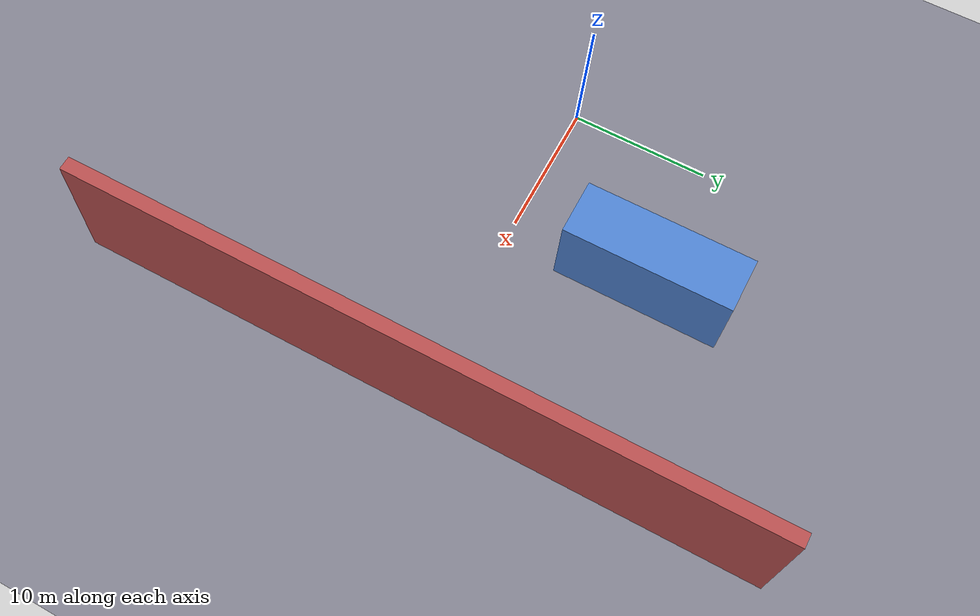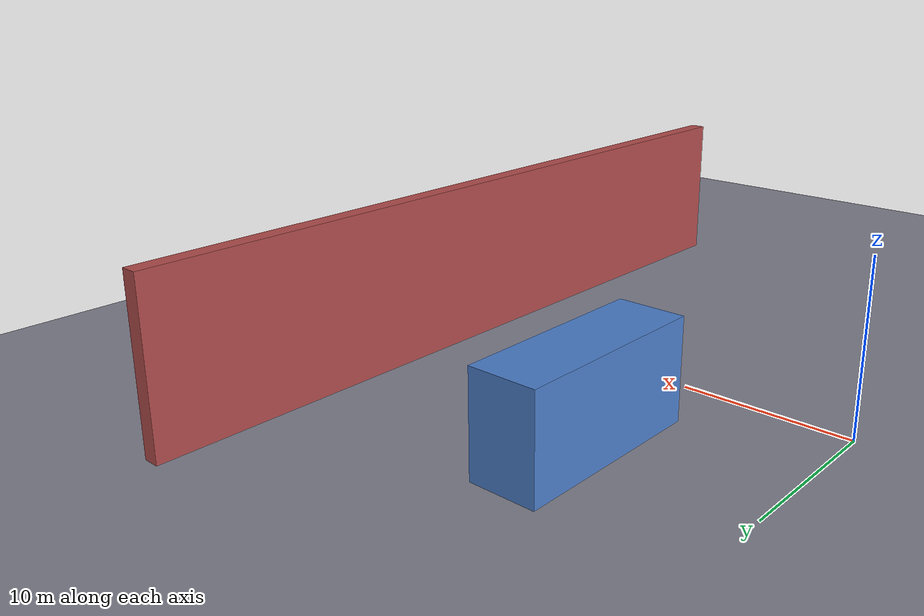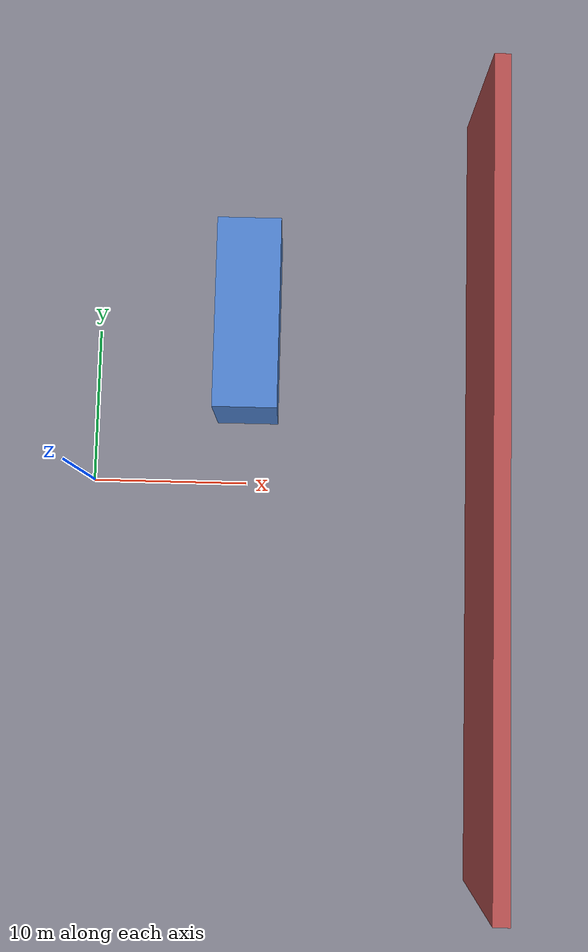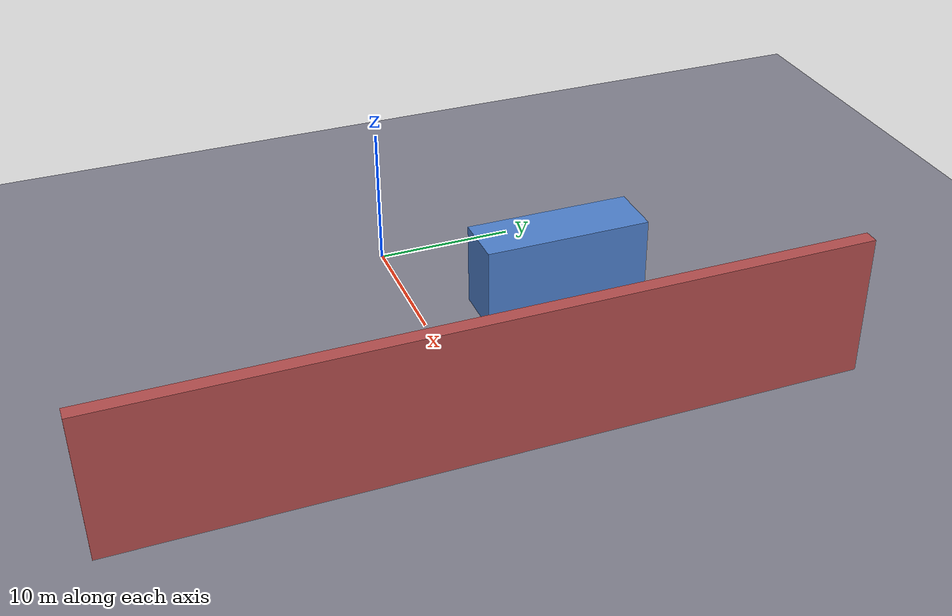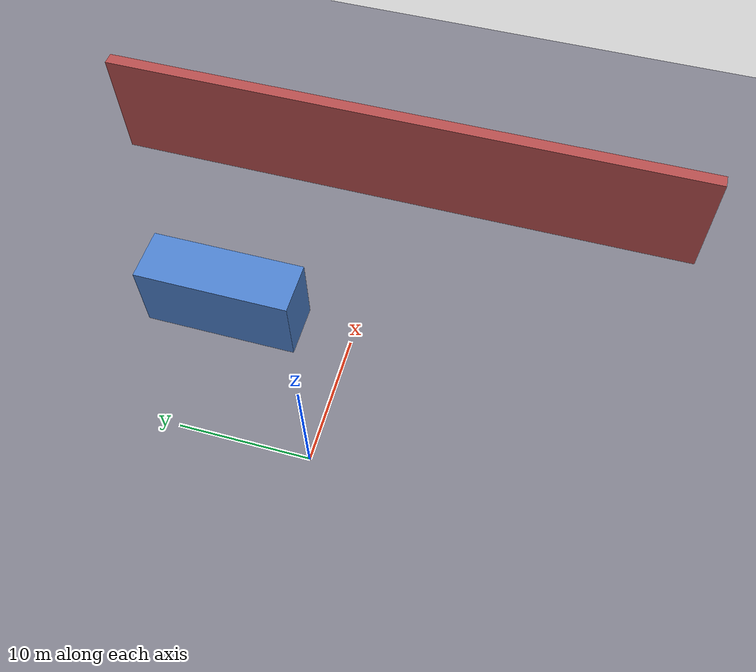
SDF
<?xml version="1.0" ?>
<sdf version="1.8">
  <world name="warehouse">

    <!-- 500Hz Physics Solver -->
    <physics name="500hz_physics" type="ignored">
      <max_step_size>0.002</max_step_size>
      <real_time_factor>1.0</real_time_factor>
      <real_time_update_rate>500</real_time_update_rate>
    </physics>

    <!-- Gazebo Sim 8 Core Plugins -->
    <plugin filename="gz-sim-physics-system" name="gz::sim::systems::Physics"/>
    <plugin filename="gz-sim-user-commands-system" name="gz::sim::systems::UserCommands"/>
    <plugin filename="gz-sim-scene-broadcaster-system" name="gz::sim::systems::SceneBroadcaster"/>
    <plugin filename="gz-sim-sensors-system" name="gz::sim::systems::Sensors"/>

    <!-- WGS84 Reference -->
    <spherical_coordinates>
      <surface_model>EARTH_WGS84</surface_model>
      <latitude_deg>37.774929</latitude_deg>
      <longitude_deg>-122.419416</longitude_deg>
      <elevation>0.0</elevation>
    </spherical_coordinates>

    <!-- Sun Light -->
    <light type="directional" name="sun">
      <cast_shadows>true</cast_shadows>
      <pose>50 50 100 0 0 0</pose>
      <diffuse>0.9 0.9 0.85 1</diffuse>
      <specular>0.2 0.2 0.2 1</specular>
    </light>

    <!-- Warehouse Concrete Floor -->
    <model name="warehouse_floor">
      <static>true</static>
      <link name="link">
        <collision name="collision">
          <geometry>
            <plane>
              <normal>0 0 1</normal>
              <size>200 200</size>
            </plane>
          </geometry>
        </collision>
        <visual name="visual">
          <geometry>
            <plane>
              <normal>0 0 1</normal>
              <size>200 200</size>
            </plane>
          </geometry>
          <material>
            <ambient>0.4 0.4 0.45 1</ambient>
            <diffuse>0.5 0.5 0.55 1</diffuse>
          </material>
        </visual>
      </link>
    </model>

    <!-- Warehouse Structural Wall Alpha -->
    <model name="warehouse_wall_alpha">
      <static>true</static>
      <pose>25 0 5 0 0 0</pose>
      <link name="link">
        <collision name="collision">
          <geometry>
            <box>
              <size>1 50 10</size>
            </box>
          </geometry>
        </collision>
        <visual name="visual">
          <geometry>
            <box>
              <size>1 50 10</size>
            </box>
          </geometry>
          <material>
            <ambient>0.6 0.2 0.2 1</ambient>
            <diffuse>0.7 0.3 0.3 1</diffuse>
          </material>
        </visual>
      </link>
    </model>

    <!-- Warehouse Shelving Obstacle Block -->
    <model name="warehouse_rack_1">
      <static>true</static>
      <pose>10 10 3 0 0 0</pose>
      <link name="link">
        <collision name="collision">
          <geometry>
            <box>
              <size>4 12 6</size>
            </box>
          </geometry>
        </collision>
        <visual name="visual">
          <geometry>
            <box>
              <size>4 12 6</size>
            </box>
          </geometry>
          <material>
            <ambient>0.2 0.4 0.7 1</ambient>
            <diffuse>0.3 0.5 0.8 1</diffuse>
          </material>
        </visual>
      </link>
    </model>

  </world>
</sdf>
